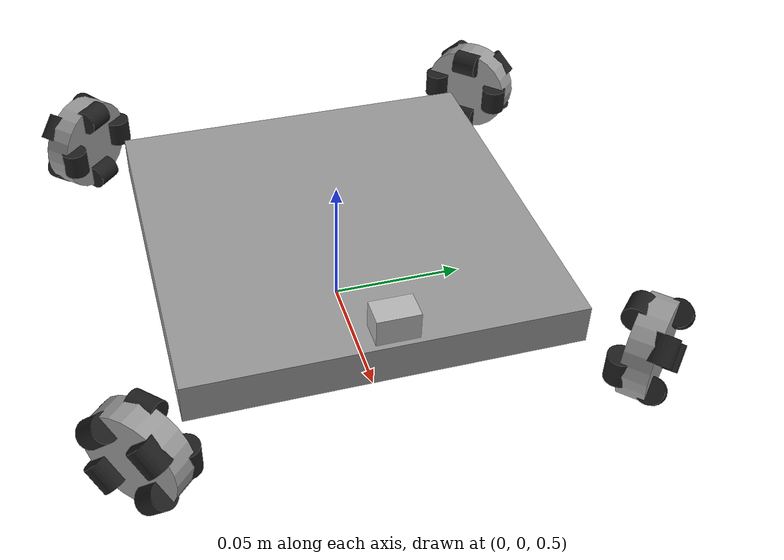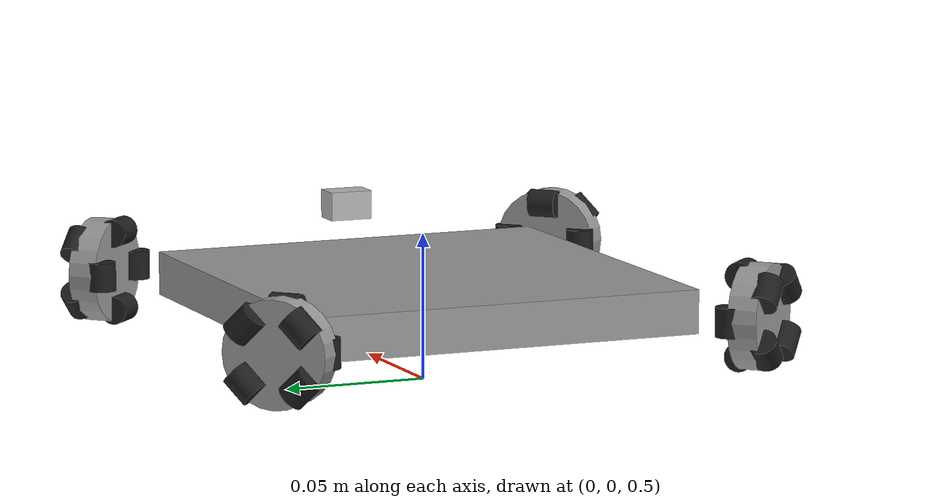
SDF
<?xml version="1.0" ?>
<!-- |    This document was autogenerated by xacro from /home/robostep/nav2-sample/src/OpenBase/openbase_gazebo_models/models/nav_omni4/model.sdf.xacro | -->
<!-- |    EDITING THIS FILE BY HAND IS NOT RECOMMENDED                                 | -->
<sdf version="1.6">
  <model name="nav_omni4_model">
    <pose>0 0 0.5 0 0 0</pose>
    <include>
      <name>damped_omni4_model</name>
      <uri>model://damped_omni4</uri>
    </include>
    <link name="lidar_link">
      <pose>0 0 0.06 0 0 0</pose>
      <inertial>
        <mass>0.001</mass>
        <inertia>
          <ixx>0.00001</ixx>
          <ixy>0</ixy>
          <ixz>0</ixz>
          <iyy>0.00001</iyy>
          <iyz>0</iyz>
          <izz>0.00001</izz>
        </inertia>
      </inertial>
      <sensor name="lidar" type="ray">
        <always_on>true</always_on>
        <visualize>true</visualize>
        <update_rate>5</update_rate>
        <ray>
          <scan>
            <horizontal>
              <samples>1080</samples>
              <resolution>1.000000</resolution>
              <min_angle>-2.356</min_angle>
              <max_angle>2.356</max_angle>
            </horizontal>
          </scan>
          <range>
            <min>0.120000</min>
            <max>10.0</max>
            <resolution>0.015000</resolution>
          </range>
          <noise>
            <type>gaussian</type>
            <mean>0.0</mean>
            <stddev>0.01</stddev>
          </noise>
        </ray>
        <plugin filename="libgazebo_ros_ray_sensor.so" name="scan">
          <ros>
            <remapping>~/out:=scan</remapping>
          </ros>
          <output_type>sensor_msgs/LaserScan</output_type>
          <frame_name>lidar_link</frame_name>
        </plugin>
      </sensor>
    </link>
    <link name="camera_link">
      <pose>0.07 0 0.05 0 0 0</pose>
      <inertial>
        <mass>0.001</mass>
        <inertia>
          <ixx>0.00001</ixx>
          <ixy>0</ixy>
          <ixz>0</ixz>
          <iyy>0.00001</iyy>
          <iyz>0</iyz>
          <izz>0.00001</izz>
        </inertia>
      </inertial>
      <visual name="visual">
        <geometry>
          <box>
            <size>0.01 0.015 0.01</size>
          </box>
        </geometry>
      </visual>
      <sensor name="depth_camera" type="depth">
        <visualize>true</visualize>
        <update_rate>30.0</update_rate>
        <camera name="camera">
          <horizontal_fov>1.047198</horizontal_fov>
          <image>
            <width>640</width>
            <height>480</height>
            <format>R8G8B8</format>
          </image>
          <clip>
            <near>0.05</near>
            <far>3</far>
          </clip>
        </camera>
        <plugin filename="libgazebo_ros_camera.so" name="depth_camera_controller">
          <baseline>0.2</baseline>
          <alwaysOn>true</alwaysOn>
          <updateRate>0.0</updateRate>
          <frame_name>camera_depth_frame</frame_name>
          <pointCloudCutoff>0.5</pointCloudCutoff>
          <pointCloudCutoffMax>3.0</pointCloudCutoffMax>
          <distortionK1>0</distortionK1>
          <distortionK2>0</distortionK2>
          <distortionK3>0</distortionK3>
          <distortionT1>0</distortionT1>
          <distortionT2>0</distortionT2>
          <CxPrime>0</CxPrime>
          <Cx>0</Cx>
          <Cy>0</Cy>
          <focalLength>0</focalLength>
          <hackBaseline>0</hackBaseline>
        </plugin>
      </sensor>
    </link>
    <link name="dummy_link_1">
      <inertial>
        <mass>0.001</mass>
        <inertia>
          <ixx>0.00001</ixx>
          <ixy>0</ixy>
          <ixz>0</ixz>
          <iyy>0.00001</iyy>
          <iyz>0</iyz>
          <izz>0.00001</izz>
        </inertia>
      </inertial>
    </link>
    <link name="dummy_link_2">
      <inertial>
        <mass>0.001</mass>
        <inertia>
          <ixx>0.00001</ixx>
          <ixy>0</ixy>
          <ixz>0</ixz>
          <iyy>0.00001</iyy>
          <iyz>0</iyz>
          <izz>0.00001</izz>
        </inertia>
      </inertial>
    </link>
    <joint name="dummy_joint1" type="revolute">
      <parent>damped_omni4_model::body_link</parent>
      <child>dummy_link_1</child>
    </joint>
    <joint name="dummy_joint2" type="revolute">
      <parent>damped_omni4_model::body_link</parent>
      <child>dummy_link_2</child>
    </joint>
    <joint name="lidar_joint" type="fixed">
      <parent>damped_omni4_model::body_link</parent>
      <child>lidar_link</child>
    </joint>
    <joint name="camera_joint" type="fixed">
      <parent>damped_omni4_model::body_link</parent>
      <child>camera_link</child>
    </joint>
    <plugin filename="libgazebo_ros_diff_drive.so" name="turtlebot3_diff_drive">
      <update_rate>30</update_rate>
      <!-- wheels -->
      <left_joint>dummy_joint1</left_joint>
      <right_joint>dummy_joint2</right_joint>
      <!-- kinematics -->
      <wheel_separation>0.287</wheel_separation>
      <wheel_diameter>0.066</wheel_diameter>
      <!-- limits -->
      <max_wheel_torque>0</max_wheel_torque>
      <max_wheel_acceleration>0.0</max_wheel_acceleration>
      <command_topic>cmd_vel</command_topic>
      <!-- output -->
      <publish_odom>true</publish_odom>
      <publish_odom_tf>true</publish_odom_tf>
      <publish_wheel_tf>false</publish_wheel_tf>
      <odometry_topic>odom</odometry_topic>
      <odometry_frame>odom</odometry_frame>
      <robot_base_frame>base_link</robot_base_frame>
    </plugin>
  </model>
</sdf>

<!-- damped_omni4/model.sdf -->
<!-- |    This document was autogenerated by xacro from /home/tm/nav2-sample/src/OpenBase/openbase_gazebo_models/models/damped_omni4/model.sdf.xacro | -->
<!-- |    EDITING THIS FILE BY HAND IS NOT RECOMMENDED                                 | -->
<sdf version="1.6">
  <model name="damped_omni4_model">
    <pose>0 0 0.03 0 0 0</pose>
    <link name="body_link">
      <pose>0 0 0 0 0 0</pose>
      <inertial>
        <mass>0.07862944645</mass>
        <pose>0 0 0 0 0 0</pose>
        <inertia>
          <ixx>0.00018035985530754</ixx>
          <ixy>0</ixy>
          <ixz>0</ixz>
          <iyy>0.00018035985530754</iyy>
          <iyz>0</iyz>
          <izz>0.00018945961663220</izz>
        </inertia>
      </inertial>
      <visual name="visual">
        <pose>0 0 0 0 0 0</pose>
        <geometry>
          <box>
            <size>0.14 0.14 0.015</size>
          </box>
        </geometry>
        <material>
          <lighting>true</lighting>
          <script>
            <uri>file://media/materials/scripts/gazebo.material</uri>
            <name>Gazebo/Grey</name>
          </script>
          <ambient>1 1 1 1</ambient>
          <diffuse>0.7 0.7 0.7 1</diffuse>
          <specular>0.01 0.01 0.01 1</specular>
          <emissive>0 0 0 1</emissive>
          <shader type="vertex">
            <normal_map>__default__</normal_map>
          </shader>
        </material>
      </visual>
      <collision name="collision">
        <laser_retro>0</laser_retro>
        <max_contacts>10</max_contacts>
        <pose>0 0 0 0 0 0</pose>
        <geometry>
          <box>
            <size>0.14 0.14 0.015</size>
          </box>
        </geometry>
        <surface>
          <friction>
            <ode>
              <mu>1</mu>
              <mu2>1</mu2>
              <fdir1>0 0 0</fdir1>
              <slip1>0</slip1>
              <slip2>0</slip2>
            </ode>
            <torsional>
              <coefficient>1</coefficient>
              <patch_radius>0</patch_radius>
              <surface_radius>0</surface_radius>
              <use_patch_radius>true</use_patch_radius>
              <ode>
                <slip>0</slip>
              </ode>
            </torsional>
          </friction>
          <bounce>
            <restitution_coefficient>0</restitution_coefficient>
            <threshold>1e+06</threshold>
          </bounce>
          <contact>
            <collide_without_contact>false</collide_without_contact>
            <collide_bitmask>1</collide_bitmask>
            <ode>
              <soft_cfm>0</soft_cfm>
              <soft_erp>0.2</soft_erp>
              <kp>1e+13</kp>
              <kd>1</kd>
              <max_vel>0.01</max_vel>
              <min_depth>0</min_depth>
            </ode>
            <bullet>
              <split_impulse>true</split_impulse>
              <split_impulse_penetration_threshold>-0.01</split_impulse_penetration_threshold>
              <soft_cfm>0</soft_cfm>
              <soft_erp>0.2</soft_erp>
              <kp>1e+13</kp>
              <kd>1</kd>
            </bullet>
          </contact>
        </surface>
      </collision>
    </link>
    <include>
      <name>simple_omni_wheel_front_left_model</name>
      <uri>model://simple_omni_wheel</uri>
      <pose>0.08485281374238571 0.0848528137423857 0 0 0 0.7853981633974483</pose>
    </include>
    <include>
      <name>simple_omni_wheel_back_left_model</name>
      <uri>model://simple_omni_wheel</uri>
      <pose>-0.0848528137423857 0.08485281374238571 0 0 0 2.356194490192345</pose>
    </include>
    <include>
      <name>simple_omni_wheel_back_right_model</name>
      <uri>model://simple_omni_wheel</uri>
      <pose>-0.08485281374238572 -0.0848528137423857 0 0 0 3.9269908169872414</pose>
    </include>
    <include>
      <name>simple_omni_wheel_front_right_model</name>
      <uri>model://simple_omni_wheel</uri>
      <pose>0.08485281374238568 -0.08485281374238572 0 0 0 5.497787143782138</pose>
    </include>
    <joint name="front_left_linear_joint" type="prismatic">
      <parent>body_link</parent>
      <child>front_left_wheel_base_link</child>
      <axis>
        <limit>
          <lower>-0.004</lower>
          <upper>0.004</upper>
        </limit>
        <dynamics>
          <spring_reference>0.0</spring_reference>
          <spring_stiffness>300.0</spring_stiffness>
          <damping>0.2</damping>
        </dynamics>
        <xyz>0 0 1</xyz>
      </axis>
    </joint>
    <link name="front_left_wheel_base_link">
      <inertial>
        <mass>0.001</mass>
        <inertia>
          <ixx>0.00001</ixx>
          <ixy>0</ixy>
          <ixz>0</ixz>
          <iyy>0.00001</iyy>
          <iyz>0</iyz>
          <izz>0.00001</izz>
        </inertia>
      </inertial>
    </link>
    <joint name="front_left_rotational_joint" type="revolute">
      <parent>front_left_wheel_base_link</parent>
      <child>simple_omni_wheel_front_left_model::omni_wheel_rim_link</child>
      <pose>0 0 0 3.141592653589793 -1.5707963267948966 3.141592653589793</pose>
      <axis>
        <xyz>0 0 1</xyz>
        <use_parent_model_frame>0</use_parent_model_frame>
        <limit>
          <lower>-1.79769e+308</lower>
          <upper>1.79769e+308</upper>
          <effort>-1</effort>
          <velocity>-1</velocity>
        </limit>
        <dynamics>
          <spring_reference>0</spring_reference>
          <spring_stiffness>0</spring_stiffness>
          <damping>0</damping>
          <friction>0.0001</friction>
        </dynamics>
      </axis>
      <physics>
        <ode>
          <limit>
            <cfm>0</cfm>
            <erp>0.2</erp>
          </limit>
          <suspension>
            <cfm>0</cfm>
            <erp>0.2</erp>
          </suspension>
        </ode>
      </physics>
    </joint>
    <joint name="front_right_linear_joint" type="prismatic">
      <parent>body_link</parent>
      <child>front_right_wheel_base_link</child>
      <axis>
        <limit>
          <lower>-0.004</lower>
          <upper>0.004</upper>
        </limit>
        <dynamics>
          <spring_reference>0.0</spring_reference>
          <spring_stiffness>300.0</spring_stiffness>
          <damping>0.2</damping>
        </dynamics>
        <xyz>0 0 1</xyz>
      </axis>
    </joint>
    <link name="front_right_wheel_base_link">
      <inertial>
        <mass>0.001</mass>
        <inertia>
          <ixx>0.00001</ixx>
          <ixy>0</ixy>
          <ixz>0</ixz>
          <iyy>0.00001</iyy>
          <iyz>0</iyz>
          <izz>0.00001</izz>
        </inertia>
      </inertial>
    </link>
    <joint name="front_right_rotational_joint" type="revolute">
      <parent>front_right_wheel_base_link</parent>
      <child>simple_omni_wheel_front_right_model::omni_wheel_rim_link</child>
      <pose>0 0 0 3.141592653589793 -1.5707963267948966 3.141592653589793</pose>
      <axis>
        <xyz>0 0 1</xyz>
        <use_parent_model_frame>0</use_parent_model_frame>
        <limit>
          <lower>-1.79769e+308</lower>
          <upper>1.79769e+308</upper>
          <effort>-1</effort>
          <velocity>-1</velocity>
        </limit>
        <dynamics>
          <spring_reference>0</spring_reference>
          <spring_stiffness>0</spring_stiffness>
          <damping>0</damping>
          <friction>0.0001</friction>
        </dynamics>
      </axis>
      <physics>
        <ode>
          <limit>
            <cfm>0</cfm>
            <erp>0.2</erp>
          </limit>
          <suspension>
            <cfm>0</cfm>
            <erp>0.2</erp>
          </suspension>
        </ode>
      </physics>
    </joint>
    <joint name="back_left_linear_joint" type="prismatic">
      <parent>body_link</parent>
      <child>back_left_wheel_base_link</child>
      <axis>
        <limit>
          <lower>-0.004</lower>
          <upper>0.004</upper>
        </limit>
        <dynamics>
          <spring_reference>0.0</spring_reference>
          <spring_stiffness>300.0</spring_stiffness>
          <damping>0.2</damping>
        </dynamics>
        <xyz>0 0 1</xyz>
      </axis>
    </joint>
    <link name="back_left_wheel_base_link">
      <inertial>
        <mass>0.001</mass>
        <inertia>
          <ixx>0.00001</ixx>
          <ixy>0</ixy>
          <ixz>0</ixz>
          <iyy>0.00001</iyy>
          <iyz>0</iyz>
          <izz>0.00001</izz>
        </inertia>
      </inertial>
    </link>
    <joint name="back_left_rotational_joint" type="revolute">
      <parent>back_left_wheel_base_link</parent>
      <child>simple_omni_wheel_back_left_model::omni_wheel_rim_link</child>
      <pose>0 0 0 3.141592653589793 -1.5707963267948966 3.141592653589793</pose>
      <axis>
        <xyz>0 0 1</xyz>
        <use_parent_model_frame>0</use_parent_model_frame>
        <limit>
          <lower>-1.79769e+308</lower>
          <upper>1.79769e+308</upper>
          <effort>-1</effort>
          <velocity>-1</velocity>
        </limit>
        <dynamics>
          <spring_reference>0</spring_reference>
          <spring_stiffness>0</spring_stiffness>
          <damping>0</damping>
          <friction>0.0001</friction>
        </dynamics>
      </axis>
      <physics>
        <ode>
          <limit>
            <cfm>0</cfm>
            <erp>0.2</erp>
          </limit>
          <suspension>
            <cfm>0</cfm>
            <erp>0.2</erp>
          </suspension>
        </ode>
      </physics>
    </joint>
    <joint name="back_right_linear_joint" type="prismatic">
      <parent>body_link</parent>
      <child>back_right_wheel_base_link</child>
      <axis>
        <limit>
          <lower>-0.004</lower>
          <upper>0.004</upper>
        </limit>
        <dynamics>
          <spring_reference>0.0</spring_reference>
          <spring_stiffness>300.0</spring_stiffness>
          <damping>0.2</damping>
        </dynamics>
        <xyz>0 0 1</xyz>
      </axis>
    </joint>
    <link name="back_right_wheel_base_link">
      <inertial>
        <mass>0.001</mass>
        <inertia>
          <ixx>0.00001</ixx>
          <ixy>0</ixy>
          <ixz>0</ixz>
          <iyy>0.00001</iyy>
          <iyz>0</iyz>
          <izz>0.00001</izz>
        </inertia>
      </inertial>
    </link>
    <joint name="back_right_rotational_joint" type="revolute">
      <parent>back_right_wheel_base_link</parent>
      <child>simple_omni_wheel_back_right_model::omni_wheel_rim_link</child>
      <pose>0 0 0 3.141592653589793 -1.5707963267948966 3.141592653589793</pose>
      <axis>
        <xyz>0 0 1</xyz>
        <use_parent_model_frame>0</use_parent_model_frame>
        <limit>
          <lower>-1.79769e+308</lower>
          <upper>1.79769e+308</upper>
          <effort>-1</effort>
          <velocity>-1</velocity>
        </limit>
        <dynamics>
          <spring_reference>0</spring_reference>
          <spring_stiffness>0</spring_stiffness>
          <damping>0</damping>
          <friction>0.0001</friction>
        </dynamics>
      </axis>
      <physics>
        <ode>
          <limit>
            <cfm>0</cfm>
            <erp>0.2</erp>
          </limit>
          <suspension>
            <cfm>0</cfm>
            <erp>0.2</erp>
          </suspension>
        </ode>
      </physics>
    </joint>
    <plugin filename="libgazebo_ros_omni_drive.so" name="omni_drive">
      <joint>front_left_rotational_joint</joint>
      <joint>front_right_rotational_joint</joint>
      <joint>back_left_rotational_joint</joint>
      <joint>back_right_rotational_joint</joint>
      <wheel_radius>0.018</wheel_radius>
    </plugin>
  </model>
</sdf>

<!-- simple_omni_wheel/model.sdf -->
<!-- |    This document was autogenerated by xacro from /home/tm/nav2-sample/src/OpenBase/openbase_gazebo_models/models/simple_omni_wheel/model.sdf.xacro | -->
<!-- |    EDITING THIS FILE BY HAND IS NOT RECOMMENDED                                 | -->
<sdf version="1.7">
  <model name="simple_omni_wheel_model">
    <link name="omni_wheel_rim_link">
      <inertial>
        <pose>0 0 0 0 1.5707963267948966 0</pose>
        <mass>0.00835758</mass>
        <inertia>
          <ixx>6.63684e-07</ixx>
          <ixy>0</ixy>
          <ixz>0</ixz>
          <iyy>6.63684e-07</iyy>
          <iyz>0</iyz>
          <izz>9.40333e-07</izz>
        </inertia>
      </inertial>
      <visual name="visual">
        <pose>0 0 0 0 1.5707963267948966 0</pose>
        <geometry>
          <cylinder>
            <radius>0.018</radius>
            <length>0.01</length>
          </cylinder>
        </geometry>
        <material>
          <script>
            <uri>file://media/materials/scripts/gazebo.material</uri>
            <name>Gazebo/Grey</name>
          </script>
        </material>
      </visual>
      <collision name="collision">
        <pose>0 0 0 0 1.5707963267948966 0</pose>
        <geometry>
          <cylinder>
            <radius>0.018</radius>
            <length>0.01</length>
          </cylinder>
        </geometry>
        <surface>
          <friction>
            <ode>
              <mu>1</mu>
              <mu2>1</mu2>
              <fdir1>0 0 0</fdir1>
              <slip1>0</slip1>
              <slip2>0</slip2>
            </ode>
          </friction>
        </surface>
      </collision>
    </link>
    <link name="omni_wheel_roller_e_link">
      <pose>-0.0055 0.01355 0 0 -0 0</pose>
      <inertial>
        <mass>0.00313845</mass>
        <pose>0 0 0 0 0 0</pose>
        <inertia>
          <ixx>2.53776e-07</ixx>
          <ixy>0</ixy>
          <ixz>0</ixz>
          <iyy>2.53776e-07</iyy>
          <iyz>0</iyz>
          <izz>1.47666e-07</izz>
        </inertia>
      </inertial>
      <visual name="visual">
        <pose>0 0 0 0 0 0</pose>
        <geometry>
          <cylinder>
            <radius>0.0049</radius>
            <length>0.01</length>
          </cylinder>
        </geometry>
        <material>
          <script>
            <uri>file://media/materials/scripts/gazebo.material</uri>
            <name>Gazebo/Black</name>
          </script>
        </material>
      </visual>
      <collision name="collision">
        <pose>0 0 0 0 0 0</pose>
        <geometry>
          <cylinder>
            <radius>0.0049</radius>
            <length>0.01</length>
          </cylinder>
        </geometry>
        <surface>
          <friction>
            <ode>
              <mu>1</mu>
              <mu2>1</mu2>
              <fdir1>0 0 0</fdir1>
              <slip1>0</slip1>
              <slip2>0</slip2>
            </ode>
          </friction>
        </surface>
      </collision>
    </link>
    <link name="omni_wheel_roller_n_link">
      <pose>-0.0055 0 0.01355 1.5707963267948966 -0 0</pose>
      <inertial>
        <mass>0.00313845</mass>
        <pose>0 0 0 0 0 0</pose>
        <inertia>
          <ixx>2.53776e-07</ixx>
          <ixy>0</ixy>
          <ixz>0</ixz>
          <iyy>2.53776e-07</iyy>
          <iyz>0</iyz>
          <izz>1.47666e-07</izz>
        </inertia>
      </inertial>
      <visual name="visual">
        <pose>0 0 0 0 0 0</pose>
        <geometry>
          <cylinder>
            <radius>0.0049</radius>
            <length>0.01</length>
          </cylinder>
        </geometry>
        <material>
          <script>
            <uri>file://media/materials/scripts/gazebo.material</uri>
            <name>Gazebo/Black</name>
          </script>
        </material>
      </visual>
      <collision name="collision">
        <pose>0 0 0 0 0 0</pose>
        <geometry>
          <cylinder>
            <radius>0.0049</radius>
            <length>0.01</length>
          </cylinder>
        </geometry>
        <surface>
          <friction>
            <ode>
              <mu>1</mu>
              <mu2>1</mu2>
              <fdir1>0 0 0</fdir1>
              <slip1>0</slip1>
              <slip2>0</slip2>
            </ode>
          </friction>
        </surface>
      </collision>
    </link>
    <link name="omni_wheel_roller_w_link">
      <pose>-0.0055 -0.01355 0 -3.141592653589793 0 0</pose>
      <inertial>
        <mass>0.00313845</mass>
        <pose>0 0 0 0 0 0</pose>
        <inertia>
          <ixx>2.53776e-07</ixx>
          <ixy>0</ixy>
          <ixz>0</ixz>
          <iyy>2.53776e-07</iyy>
          <iyz>0</iyz>
          <izz>1.47666e-07</izz>
        </inertia>
      </inertial>
      <visual name="visual">
        <pose>0 0 0 0 0 0</pose>
        <geometry>
          <cylinder>
            <radius>0.0049</radius>
            <length>0.01</length>
          </cylinder>
        </geometry>
        <material>
          <script>
            <uri>file://media/materials/scripts/gazebo.material</uri>
            <name>Gazebo/Black</name>
          </script>
        </material>
      </visual>
      <collision name="collision">
        <pose>0 0 0 0 0 0</pose>
        <geometry>
          <cylinder>
            <radius>0.0049</radius>
            <length>0.01</length>
          </cylinder>
        </geometry>
        <surface>
          <friction>
            <ode>
              <mu>1</mu>
              <mu2>1</mu2>
              <fdir1>0 0 0</fdir1>
              <slip1>0</slip1>
              <slip2>0</slip2>
            </ode>
          </friction>
        </surface>
      </collision>
    </link>
    <link name="omni_wheel_roller_s_link">
      <pose>-0.0055 0 -0.01355 -1.5707963267948966 0 0</pose>
      <inertial>
        <mass>0.00313845</mass>
        <pose>0 0 0 0 0 0</pose>
        <inertia>
          <ixx>2.53776e-07</ixx>
          <ixy>0</ixy>
          <ixz>0</ixz>
          <iyy>2.53776e-07</iyy>
          <iyz>0</iyz>
          <izz>1.47666e-07</izz>
        </inertia>
      </inertial>
      <visual name="visual">
        <pose>0 0 0 0 0 0</pose>
        <geometry>
          <cylinder>
            <radius>0.0049</radius>
            <length>0.01</length>
          </cylinder>
        </geometry>
        <material>
          <script>
            <uri>file://media/materials/scripts/gazebo.material</uri>
            <name>Gazebo/Black</name>
          </script>
        </material>
      </visual>
      <collision name="collision">
        <pose>0 0 0 0 0 0</pose>
        <geometry>
          <cylinder>
            <radius>0.0049</radius>
            <length>0.01</length>
          </cylinder>
        </geometry>
        <surface>
          <friction>
            <ode>
              <mu>1</mu>
              <mu2>1</mu2>
              <fdir1>0 0 0</fdir1>
              <slip1>0</slip1>
              <slip2>0</slip2>
            </ode>
          </friction>
        </surface>
      </collision>
    </link>
    <link name="omni_wheel_roller_ne_link">
      <pose>0.0055 0.009581 0.009581 0.7853981633974483 -0 0</pose>
      <inertial>
        <mass>0.00313845</mass>
        <pose>0 0 0 0 0 0</pose>
        <inertia>
          <ixx>2.53776e-07</ixx>
          <ixy>0</ixy>
          <ixz>0</ixz>
          <iyy>2.53776e-07</iyy>
          <iyz>0</iyz>
          <izz>1.47666e-07</izz>
        </inertia>
      </inertial>
      <visual name="visual">
        <pose>0 0 0 0 0 0</pose>
        <geometry>
          <cylinder>
            <radius>0.0049</radius>
            <length>0.01</length>
          </cylinder>
        </geometry>
        <material>
          <script>
            <uri>file://media/materials/scripts/gazebo.material</uri>
            <name>Gazebo/Black</name>
          </script>
        </material>
      </visual>
      <collision name="collision">
        <pose>0 0 0 0 0 0</pose>
        <geometry>
          <cylinder>
            <radius>0.0049</radius>
            <length>0.01</length>
          </cylinder>
        </geometry>
        <surface>
          <friction>
            <ode>
              <mu>1</mu>
              <mu2>1</mu2>
              <fdir1>0 0 0</fdir1>
              <slip1>0</slip1>
              <slip2>0</slip2>
            </ode>
          </friction>
        </surface>
      </collision>
    </link>
    <link name="omni_wheel_roller_nw_link">
      <pose>0.0055 -0.009581 0.009581 2.356194490192345 -0 0</pose>
      <inertial>
        <mass>0.00313845</mass>
        <pose>0 0 0 0 0 0</pose>
        <inertia>
          <ixx>2.53776e-07</ixx>
          <ixy>0</ixy>
          <ixz>0</ixz>
          <iyy>2.53776e-07</iyy>
          <iyz>0</iyz>
          <izz>1.47666e-07</izz>
        </inertia>
      </inertial>
      <visual name="visual">
        <pose>0 0 0 0 0 0</pose>
        <geometry>
          <cylinder>
            <radius>0.0049</radius>
            <length>0.01</length>
          </cylinder>
        </geometry>
        <material>
          <script>
            <uri>file://media/materials/scripts/gazebo.material</uri>
            <name>Gazebo/Black</name>
          </script>
        </material>
      </visual>
      <collision name="collision">
        <pose>0 0 0 0 0 0</pose>
        <geometry>
          <cylinder>
            <radius>0.0049</radius>
            <length>0.01</length>
          </cylinder>
        </geometry>
        <surface>
          <friction>
            <ode>
              <mu>1</mu>
              <mu2>1</mu2>
              <fdir1>0 0 0</fdir1>
              <slip1>0</slip1>
              <slip2>0</slip2>
            </ode>
          </friction>
        </surface>
      </collision>
    </link>
    <link name="omni_wheel_roller_sw_link">
      <pose>0.0055 -0.009581 -0.009581 -2.356194490192345 0 0</pose>
      <inertial>
        <mass>0.00313845</mass>
        <pose>0 0 0 0 0 0</pose>
        <inertia>
          <ixx>2.53776e-07</ixx>
          <ixy>0</ixy>
          <ixz>0</ixz>
          <iyy>2.53776e-07</iyy>
          <iyz>0</iyz>
          <izz>1.47666e-07</izz>
        </inertia>
      </inertial>
      <visual name="visual">
        <pose>0 0 0 0 0 0</pose>
        <geometry>
          <cylinder>
            <radius>0.0049</radius>
            <length>0.01</length>
          </cylinder>
        </geometry>
        <material>
          <script>
            <uri>file://media/materials/scripts/gazebo.material</uri>
            <name>Gazebo/Black</name>
          </script>
        </material>
      </visual>
      <collision name="collision">
        <pose>0 0 0 0 0 0</pose>
        <geometry>
          <cylinder>
            <radius>0.0049</radius>
            <length>0.01</length>
          </cylinder>
        </geometry>
        <surface>
          <friction>
            <ode>
              <mu>1</mu>
              <mu2>1</mu2>
              <fdir1>0 0 0</fdir1>
              <slip1>0</slip1>
              <slip2>0</slip2>
            </ode>
          </friction>
        </surface>
      </collision>
    </link>
    <link name="omni_wheel_roller_se_link">
      <pose>0.0055 0.009581 -0.009581 -0.7853981633974483 0 0</pose>
      <inertial>
        <mass>0.00313845</mass>
        <pose>0 0 0 0 0 0</pose>
        <inertia>
          <ixx>2.53776e-07</ixx>
          <ixy>0</ixy>
          <ixz>0</ixz>
          <iyy>2.53776e-07</iyy>
          <iyz>0</iyz>
          <izz>1.47666e-07</izz>
        </inertia>
      </inertial>
      <visual name="visual">
        <pose>0 0 0 0 0 0</pose>
        <geometry>
          <cylinder>
            <radius>0.0049</radius>
            <length>0.01</length>
          </cylinder>
        </geometry>
        <material>
          <script>
            <uri>file://media/materials/scripts/gazebo.material</uri>
            <name>Gazebo/Black</name>
          </script>
        </material>
      </visual>
      <collision name="collision">
        <pose>0 0 0 0 0 0</pose>
        <geometry>
          <cylinder>
            <radius>0.0049</radius>
            <length>0.01</length>
          </cylinder>
        </geometry>
        <surface>
          <friction>
            <ode>
              <mu>1</mu>
              <mu2>1</mu2>
              <fdir1>0 0 0</fdir1>
              <slip1>0</slip1>
              <slip2>0</slip2>
            </ode>
          </friction>
        </surface>
      </collision>
    </link>
    <joint name="omni_wheel_s_joint" type="revolute">
      <parent>omni_wheel_rim_link</parent>
      <child>omni_wheel_roller_s_link</child>
      <pose>0 0 0 0 0 1.5707963267948966</pose>
      <axis>
        <xyz>0 0 1</xyz>
        <dynamics>
          <spring_reference>0</spring_reference>
          <spring_stiffness>0</spring_stiffness>
          <damping>0</damping>
          <friction>0.001</friction>
        </dynamics>
      </axis>
    </joint>
    <joint name="omni_wheel_se_joint" type="revolute">
      <parent>omni_wheel_rim_link</parent>
      <child>omni_wheel_roller_se_link</child>
      <pose>0 0 0 0 0 1.5707963267948966</pose>
      <axis>
        <xyz>0 0 1</xyz>
        <dynamics>
          <spring_reference>0</spring_reference>
          <spring_stiffness>0</spring_stiffness>
          <damping>0</damping>
          <friction>0.001</friction>
        </dynamics>
      </axis>
    </joint>
    <joint name="omni_wheel_e_joint" type="revolute">
      <parent>omni_wheel_rim_link</parent>
      <child>omni_wheel_roller_e_link</child>
      <pose>0 0 0 0 0 1.5707963267948966</pose>
      <axis>
        <xyz>0 0 1</xyz>
        <dynamics>
          <spring_reference>0</spring_reference>
          <spring_stiffness>0</spring_stiffness>
          <damping>0</damping>
          <friction>0.001</friction>
        </dynamics>
      </axis>
    </joint>
    <joint name="omni_wheel_ne_joint" type="revolute">
      <parent>omni_wheel_rim_link</parent>
      <child>omni_wheel_roller_ne_link</child>
      <pose>0 0 0 0 0 1.5707963267948966</pose>
      <axis>
        <xyz>0 0 1</xyz>
        <dynamics>
          <spring_reference>0</spring_reference>
          <spring_stiffness>0</spring_stiffness>
          <damping>0</damping>
          <friction>0.001</friction>
        </dynamics>
      </axis>
    </joint>
    <joint name="omni_wheel_n_joint" type="revolute">
      <parent>omni_wheel_rim_link</parent>
      <child>omni_wheel_roller_n_link</child>
      <pose>0 0 0 0 0 1.5707963267948966</pose>
      <axis>
        <xyz>0 0 1</xyz>
        <dynamics>
          <spring_reference>0</spring_reference>
          <spring_stiffness>0</spring_stiffness>
          <damping>0</damping>
          <friction>0.001</friction>
        </dynamics>
      </axis>
    </joint>
    <joint name="omni_wheel_nw_joint" type="revolute">
      <parent>omni_wheel_rim_link</parent>
      <child>omni_wheel_roller_nw_link</child>
      <pose>0 0 0 0 0 1.5707963267948966</pose>
      <axis>
        <xyz>0 0 1</xyz>
        <dynamics>
          <spring_reference>0</spring_reference>
          <spring_stiffness>0</spring_stiffness>
          <damping>0</damping>
          <friction>0.001</friction>
        </dynamics>
      </axis>
    </joint>
    <joint name="omni_wheel_w_joint" type="revolute">
      <parent>omni_wheel_rim_link</parent>
      <child>omni_wheel_roller_w_link</child>
      <pose>0 0 0 0 0 1.5707963267948966</pose>
      <axis>
        <xyz>0 0 1</xyz>
        <dynamics>
          <spring_reference>0</spring_reference>
          <spring_stiffness>0</spring_stiffness>
          <damping>0</damping>
          <friction>0.001</friction>
        </dynamics>
      </axis>
    </joint>
    <joint name="omni_wheel_sw_joint" type="revolute">
      <parent>omni_wheel_rim_link</parent>
      <child>omni_wheel_roller_sw_link</child>
      <pose>0 0 0 0 0 1.5707963267948966</pose>
      <axis>
        <xyz>0 0 1</xyz>
        <dynamics>
          <spring_reference>0</spring_reference>
          <spring_stiffness>0</spring_stiffness>
          <damping>0</damping>
          <friction>0.001</friction>
        </dynamics>
      </axis>
    </joint>
  </model>
</sdf>
